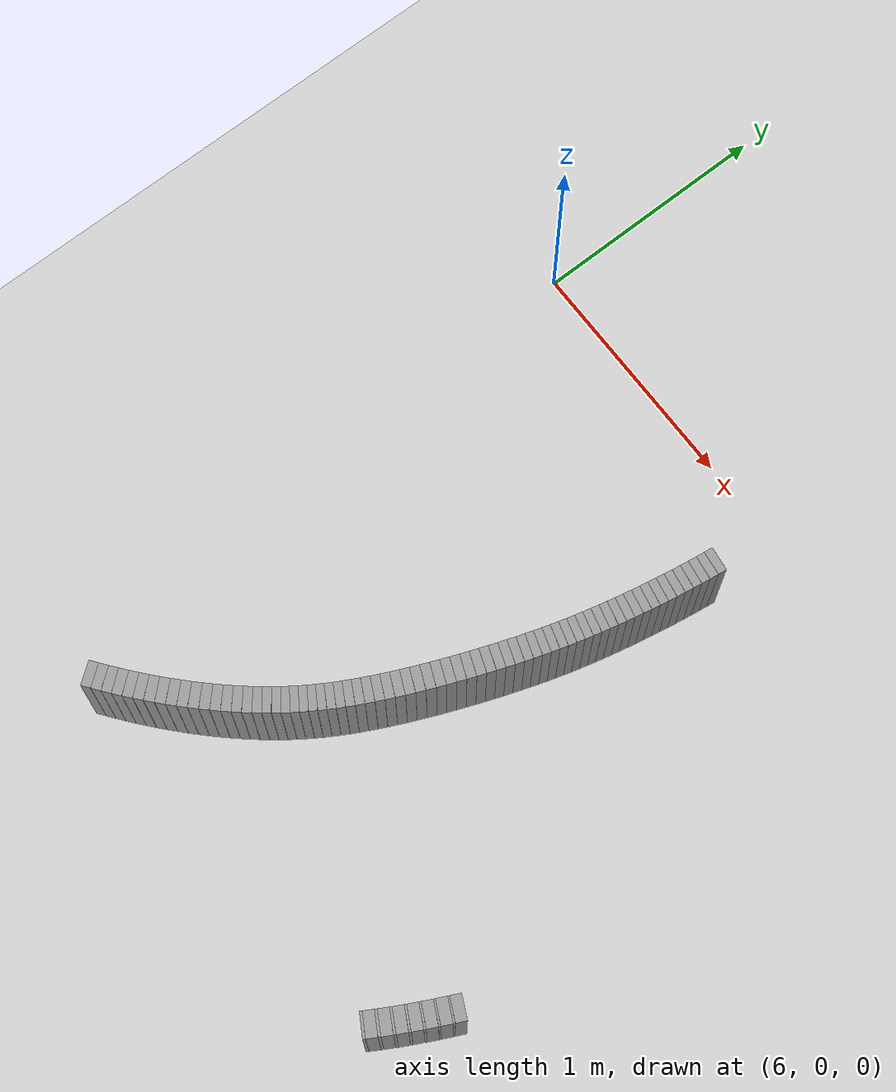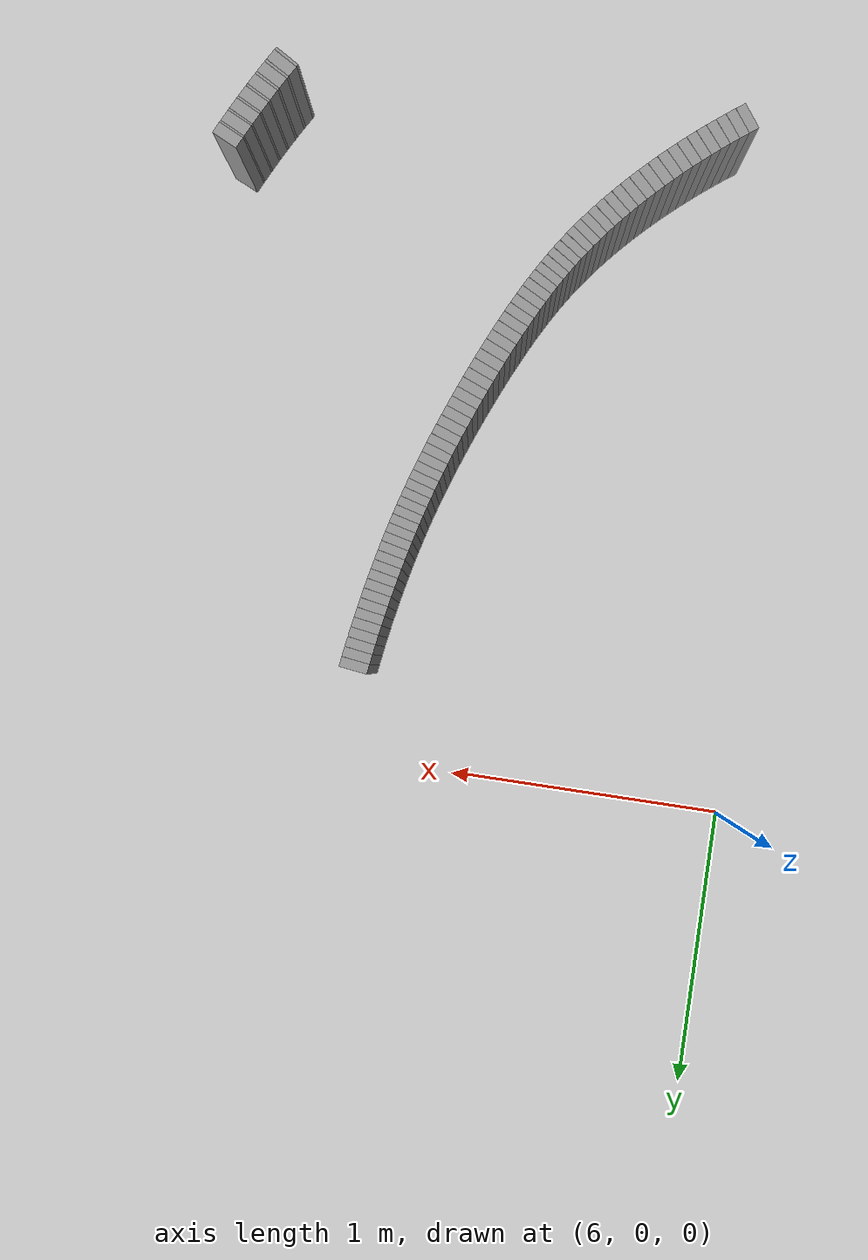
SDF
<sdf version="1.6">
 <world name="default">
  <include><uri>model://ground_plane</uri></include>
  <include><uri>model://sun</uri></include>
  <model name="wall_655_outward">
   <static>true</static>
   <link name="link">
    <collision name="collision">
     <geometry><box><size>0.038747416831680745 0.1 0.45</size></box></geometry>
    </collision>
    <visual name="visual">
     <geometry><box><size>0.038747416831680745 0.1 0.45</size></box></geometry>
     <material>
      <script><uri>file://media/materials/scripts/gazebo.material</uri><name>Gazebo/Gray</name></script>
     </material>
    </visual>
   </link>
   <pose>6.311307231462866 -2.446634651412248 0.225 0 0 0.6378931319755342</pose>
  </model>
  <model name="wall_656_outward">
   <static>true</static>
   <link name="link">
    <collision name="collision">
     <geometry><box><size>0.03888709349684669 0.1 0.45</size></box></geometry>
    </collision>
    <visual name="visual">
     <geometry><box><size>0.03888709349684669 0.1 0.45</size></box></geometry>
     <material>
      <script><uri>file://media/materials/scripts/gazebo.material</uri><name>Gazebo/Gray</name></script>
     </material>
    </visual>
   </link>
   <pose>6.342331148408654 -2.423306015688967 0.225 0 0 0.6515864064085469</pose>
  </model>
  <model name="wall_657_outward">
   <static>true</static>
   <link name="link">
    <collision name="collision">
     <geometry><box><size>0.0390929559833186 0.1 0.45</size></box></geometry>
    </collision>
    <visual name="visual">
     <geometry><box><size>0.0390929559833186 0.1 0.45</size></box></geometry>
     <material>
      <script><uri>file://media/materials/scripts/gazebo.material</uri><name>Gazebo/Gray</name></script>
     </material>
    </visual>
   </link>
   <pose>6.373163946349466 -2.399442136953753 0.225 0 0 0.6657176327346298</pose>
  </model>
  <model name="wall_658_outward">
   <static>true</static>
   <link name="link">
    <collision name="collision">
     <geometry><box><size>0.0393525218760183 0.1 0.45</size></box></geometry>
    </collision>
    <visual name="visual">
     <geometry><box><size>0.0393525218760183 0.1 0.45</size></box></geometry>
     <material>
      <script><uri>file://media/materials/scripts/gazebo.material</uri><name>Gazebo/Gray</name></script>
     </material>
    </visual>
   </link>
   <pose>6.403833737624618 -2.374994105073635 0.225 0 0 0.6802201791108807</pose>
  </model>
  <model name="wall_659_outward">
   <static>true</static>
   <link name="link">
    <collision name="collision">
     <geometry><box><size>0.03964649102106734 0.1 0.45</size></box></geometry>
    </collision>
    <visual name="visual">
     <geometry><box><size>0.03964649102106734 0.1 0.45</size></box></geometry>
     <material>
      <script><uri>file://media/materials/scripts/gazebo.material</uri><name>Gazebo/Gray</name></script>
     </material>
    </visual>
   </link>
   <pose>6.434355738448117 -2.34992354490766 0.225 0 0 0.6950248523212923</pose>
  </model>
  <model name="wall_660_outward">
   <static>true</static>
   <link name="link">
    <collision name="collision">
     <geometry><box><size>0.0399477707172006 0.1 0.45</size></box></geometry>
    </collision>
    <visual name="visual">
     <geometry><box><size>0.0399477707172006 0.1 0.45</size></box></geometry>
     <material>
      <script><uri>file://media/materials/scripts/gazebo.material</uri><name>Gazebo/Gray</name></script>
     </material>
    </visual>
   </link>
   <pose>6.464727348959415 -2.324208036813104 0.225 0 0 0.7100633068083779</pose>
  </model>
  <model name="wall_661_outward">
   <static>true</static>
   <link name="link">
    <collision name="collision">
     <geometry><box><size>0.04021680874015597 0.1 0.45</size></box></geometry>
    </collision>
    <visual name="visual">
     <geometry><box><size>0.04021680874015597 0.1 0.45</size></box></geometry>
     <material>
      <script><uri>file://media/materials/scripts/gazebo.material</uri><name>Gazebo/Gray</name></script>
     </material>
    </visual>
   </link>
   <pose>6.494921377047865 -2.2978486429975655 0.225 0 0 0.7252781700610521</pose>
  </model>
  <model name="wall_662_outward">
   <static>true</static>
   <link name="link">
    <collision name="collision">
     <geometry><box><size>0.04041200717022239 0.1 0.45</size></box></geometry>
    </collision>
    <visual name="visual">
     <geometry><box><size>0.04041200717022239 0.1 0.45</size></box></geometry>
     <material>
      <script><uri>file://media/materials/scripts/gazebo.material</uri><name>Gazebo/Gray</name></script>
     </material>
    </visual>
   </link>
   <pose>6.524881509724758 -2.2708755823564006 0.225 0 0 0.7406445479703604</pose>
  </model>
  <model name="wall_663_outward">
   <static>true</static>
   <link name="link">
    <collision name="collision">
     <geometry><box><size>0.040492106740014806 0.1 0.45</size></box></geometry>
    </collision>
    <visual name="visual">
     <geometry><box><size>0.040492106740014806 0.1 0.45</size></box></geometry>
     <material>
      <script><uri>file://media/materials/scripts/gazebo.material</uri><name>Gazebo/Gray</name></script>
     </material>
    </visual>
   </link>
   <pose>6.554522855699851 -2.243349937136828 0.225 0 0 0.7561519261517036</pose>
  </model>
  <model name="wall_664_outward">
   <static>true</static>
   <link name="link">
    <collision name="collision">
     <geometry><box><size>0.040421280522687925 0.1 0.45</size></box></geometry>
    </collision>
    <visual name="visual">
     <geometry><box><size>0.040421280522687925 0.1 0.45</size></box></geometry>
     <material>
      <script><uri>file://media/materials/scripts/gazebo.material</uri><name>Gazebo/Gray</name></script>
     </material>
    </visual>
   </link>
   <pose>6.583735153411123 -2.215362705274139 0.225 0 0 0.7718298495467955</pose>
  </model>
  <model name="wall_665_outward">
   <static>true</static>
   <link name="link">
    <collision name="collision">
     <geometry><box><size>0.0401747363946287 0.1 0.45</size></box></geometry>
    </collision>
    <visual name="visual">
     <geometry><box><size>0.0401747363946287 0.1 0.45</size></box></geometry>
     <material>
      <script><uri>file://media/materials/scripts/gazebo.material</uri><name>Gazebo/Gray</name></script>
     </material>
    </visual>
   </link>
   <pose>6.612389681235221 -2.187029950665684 0.225 0 0 0.7877224059254294</pose>
  </model>
  <model name="wall_666_outward">
   <static>true</static>
   <link name="link">
    <collision name="collision">
     <geometry><box><size>0.03973526262156999 0.1 0.45</size></box></geometry>
    </collision>
    <visual name="visual">
     <geometry><box><size>0.03973526262156999 0.1 0.45</size></box></geometry>
     <material>
      <script><uri>file://media/materials/scripts/gazebo.material</uri><name>Gazebo/Gray</name></script>
     </material>
    </visual>
   </link>
   <pose>6.640346792000537 -2.1584870440042163 0.225 0 0 0.803898272300709</pose>
  </model>
  <model name="wall_667_outward">
   <static>true</static>
   <link name="link">
    <collision name="collision">
     <geometry><box><size>0.03911395762814799 0.1 0.45</size></box></geometry>
    </collision>
    <visual name="visual">
     <geometry><box><size>0.03911395762814799 0.1 0.45</size></box></geometry>
     <material>
      <script><uri>file://media/materials/scripts/gazebo.material</uri><name>Gazebo/Gray</name></script>
     </material>
    </visual>
   </link>
   <pose>6.667468790460269 -2.1298760209772496 0.225 0 0 0.8204499657200307</pose>
  </model>
  <model name="wall_668_outward">
   <static>true</static>
   <link name="link">
    <collision name="collision">
     <geometry><box><size>0.03832798854689904 0.1 0.45</size></box></geometry>
    </collision>
    <visual name="visual">
     <geometry><box><size>0.03832798854689904 0.1 0.45</size></box></geometry>
     <material>
      <script><uri>file://media/materials/scripts/gazebo.material</uri><name>Gazebo/Gray</name></script>
     </material>
    </visual>
   </link>
   <pose>6.693632395083317 -2.101333570766262 0.225 0 0 0.8374322417400498</pose>
  </model>
  <model name="wall_669_outward">
   <static>true</static>
   <link name="link">
    <collision name="collision">
     <geometry><box><size>0.03741911348396584 0.1 0.45</size></box></geometry>
    </collision>
    <visual name="visual">
     <geometry><box><size>0.03741911348396584 0.1 0.45</size></box></geometry>
     <material>
      <script><uri>file://media/materials/scripts/gazebo.material</uri><name>Gazebo/Gray</name></script>
     </material>
    </visual>
   </link>
   <pose>6.718738687981231 -2.07297920508329 0.225 0 0 0.8549375860071171</pose>
  </model>
  <model name="wall_670_outward">
   <static>true</static>
   <link name="link">
    <collision name="collision">
     <geometry><box><size>0.036444544524232445 0.1 0.45</size></box></geometry>
    </collision>
    <visual name="visual">
     <geometry><box><size>0.036444544524232445 0.1 0.45</size></box></geometry>
     <material>
      <script><uri>file://media/materials/scripts/gazebo.material</uri><name>Gazebo/Gray</name></script>
     </material>
    </visual>
   </link>
   <pose>6.742725884326835 -2.044899612455494 0.225 0 0 0.8729721315396879</pose>
  </model>
  <model name="wall_671_outward">
   <static>true</static>
   <link name="link">
    <collision name="collision">
     <geometry><box><size>0.03545973229028524 0.1 0.45</size></box></geometry>
    </collision>
    <visual name="visual">
     <geometry><box><size>0.03545973229028524 0.1 0.45</size></box></geometry>
     <material>
      <script><uri>file://media/materials/scripts/gazebo.material</uri><name>Gazebo/Gray</name></script>
     </material>
    </visual>
   </link>
   <pose>6.7655726797611075 -2.017142294423868 0.225 0 0 0.8915489125881466</pose>
  </model>
  <model name="wall_672_outward">
   <static>true</static>
   <link name="link">
    <collision name="collision">
     <geometry><box><size>0.034540432960970514 0.1 0.45</size></box></geometry>
    </collision>
    <visual name="visual">
     <geometry><box><size>0.034540432960970514 0.1 0.45</size></box></geometry>
     <material>
      <script><uri>file://media/materials/scripts/gazebo.material</uri><name>Gazebo/Gray</name></script>
     </material>
    </visual>
   </link>
   <pose>6.787301884315653 -1.9897062565113623 0.225 0 0 0.9106126237355452</pose>
  </model>
  <model name="wall_673_outward">
   <static>true</static>
   <link name="link">
    <collision name="collision">
     <geometry><box><size>0.03374078538872502 0.1 0.45</size></box></geometry>
    </collision>
    <visual name="visual">
     <geometry><box><size>0.03374078538872502 0.1 0.45</size></box></geometry>
     <material>
      <script><uri>file://media/materials/scripts/gazebo.material</uri><name>Gazebo/Gray</name></script>
     </material>
    </visual>
   </link>
   <pose>6.807978077994241 -1.962540724245133 0.225 0 0 0.9300493403886567</pose>
  </model>
  <model name="wall_674_outward">
   <static>true</static>
   <link name="link">
    <collision name="collision">
     <geometry><box><size>0.03313095631724472 0.1 0.45</size></box></geometry>
    </collision>
    <visual name="visual">
     <geometry><box><size>0.03313095631724472 0.1 0.45</size></box></geometry>
     <material>
      <script><uri>file://media/materials/scripts/gazebo.material</uri><name>Gazebo/Gray</name></script>
     </material>
    </visual>
   </link>
   <pose>6.827702427934109 -1.9355444449445467 0.225 0 0 0.9497428519369709</pose>
  </model>
  <model name="wall_675_outward">
   <static>true</static>
   <link name="link">
    <collision name="collision">
     <geometry><box><size>0.032752248422608383 0.1 0.45</size></box></geometry>
    </collision>
    <visual name="visual">
     <geometry><box><size>0.032752248422608383 0.1 0.45</size></box></geometry>
     <material>
      <script><uri>file://media/materials/scripts/gazebo.material</uri><name>Gazebo/Gray</name></script>
     </material>
    </visual>
   </link>
   <pose>6.8466066394080665 -1.9085689998648223 0.225 0 0 0.9694466873401859</pose>
  </model>
  <model name="wall_676_outward">
   <static>true</static>
   <link name="link">
    <collision name="collision">
     <geometry><box><size>0.032608995075320515 0.1 0.45</size></box></geometry>
    </collision>
    <visual name="visual">
     <geometry><box><size>0.032608995075320515 0.1 0.45</size></box></geometry>
     <material>
      <script><uri>file://media/materials/scripts/gazebo.material</uri><name>Gazebo/Gray</name></script>
     </material>
    </visual>
   </link>
   <pose>6.864831569519396 -1.8814438618708136 0.225 0 0 0.9889777700289151</pose>
  </model>
  <model name="wall_677_outward">
   <static>true</static>
   <link name="link">
    <collision name="collision">
     <geometry><box><size>0.03270801193509638 0.1 0.45</size></box></geometry>
    </collision>
    <visual name="visual">
     <geometry><box><size>0.03270801193509638 0.1 0.45</size></box></geometry>
     <material>
      <script><uri>file://media/materials/scripts/gazebo.material</uri><name>Gazebo/Gray</name></script>
     </material>
    </visual>
   </link>
   <pose>6.882515718632405 -1.8539893350362413 0.225 0 0 1.0081176151260762</pose>
  </model>
  <model name="wall_678_outward">
   <static>true</static>
   <link name="link">
    <collision name="collision">
     <geometry><box><size>0.03302587677341144 0.1 0.45</size></box></geometry>
    </collision>
    <visual name="visual">
     <geometry><box><size>0.03302587677341144 0.1 0.45</size></box></geometry>
     <material>
      <script><uri>file://media/materials/scripts/gazebo.material</uri><name>Gazebo/Gray</name></script>
     </material>
    </visual>
   </link>
   <pose>6.8997881084292345 -1.8260285116106525 0.225 0 0 1.0266688241556865</pose>
  </model>
  <model name="wall_679_outward">
   <static>true</static>
   <link name="link">
    <collision name="collision">
     <geometry><box><size>0.03352343752667499 0.1 0.45</size></box></geometry>
    </collision>
    <visual name="visual">
     <geometry><box><size>0.03352343752667499 0.1 0.45</size></box></geometry>
     <material>
      <script><uri>file://media/materials/scripts/gazebo.material</uri><name>Gazebo/Gray</name></script>
     </material>
    </visual>
   </link>
   <pose>6.916756943816727 -1.7974072988924423 0.225 0 0 1.0444609332098056</pose>
  </model>
  <model name="wall_680_outward">
   <static>true</static>
   <link name="link">
    <collision name="collision">
     <geometry><box><size>0.0341499738957431 0.1 0.45</size></box></geometry>
    </collision>
    <visual name="visual">
     <geometry><box><size>0.0341499738957431 0.1 0.45</size></box></geometry>
     <material>
      <script><uri>file://media/materials/scripts/gazebo.material</uri><name>Gazebo/Gray</name></script>
     </material>
    </visual>
   </link>
   <pose>6.933504453827389 -1.768007270669243 0.225 0 0 1.061377560280169</pose>
  </model>
  <model name="wall_681_outward">
   <static>true</static>
   <link name="link">
    <collision name="collision">
     <geometry><box><size>0.0348540861040887 0.1 0.45</size></box></geometry>
    </collision>
    <visual name="visual">
     <geometry><box><size>0.0348540861040887 0.1 0.45</size></box></geometry>
     <material>
      <script><uri>file://media/materials/scripts/gazebo.material</uri><name>Gazebo/Gray</name></script>
     </material>
    </visual>
   </link>
   <pose>6.950086124950611 -1.7377523134168258 0.225 0 0 1.0773400360392695</pose>
  </model>
  <model name="wall_682_outward">
   <static>true</static>
   <link name="link">
    <collision name="collision">
     <geometry><box><size>0.03557476136177643 0.1 0.45</size></box></geometry>
    </collision>
    <visual name="visual">
     <geometry><box><size>0.03557476136177643 0.1 0.45</size></box></geometry>
     <material>
      <script><uri>file://media/materials/scripts/gazebo.material</uri><name>Gazebo/Gray</name></script>
     </material>
    </visual>
   </link>
   <pose>6.96653079293077 -1.7066145699181794 0.225 0 0 1.0923098046919568</pose>
  </model>
  <model name="wall_683_outward">
   <static>true</static>
   <link name="link">
    <collision name="collision">
     <geometry><box><size>0.03627989585012954 0.1 0.45</size></box></geometry>
    </collision>
    <visual name="visual">
     <geometry><box><size>0.03627989585012954 0.1 0.45</size></box></geometry>
     <material>
      <script><uri>file://media/materials/scripts/gazebo.material</uri><name>Gazebo/Gray</name></script>
     </material>
    </visual>
   </link>
   <pose>6.982846689923134 -1.6746067403843807 0.225 0 0 1.106315767361568</pose>
  </model>
  <model name="wall_684_outward">
   <static>true</static>
   <link name="link">
    <collision name="collision">
     <geometry><box><size>0.03693175585829394 0.1 0.45</size></box></geometry>
    </collision>
    <visual name="visual">
     <geometry><box><size>0.03693175585829394 0.1 0.45</size></box></geometry>
     <material>
      <script><uri>file://media/materials/scripts/gazebo.material</uri><name>Gazebo/Gray</name></script>
     </material>
    </visual>
   </link>
   <pose>6.999029001448482 -1.6417728777723404 0.225 0 0 1.1193314882433734</pose>
  </model>
  <model name="wall_685_outward">
   <static>true</static>
   <link name="link">
    <collision name="collision">
     <geometry><box><size>0.03749195572213562 0.1 0.45</size></box></geometry>
    </collision>
    <visual name="visual">
     <geometry><box><size>0.03749195572213562 0.1 0.45</size></box></geometry>
     <material>
      <script><uri>file://media/materials/scripts/gazebo.material</uri><name>Gazebo/Gray</name></script>
     </material>
    </visual>
   </link>
   <pose>7.015059285010038 -1.608191609809309 0.225 0 0 1.1314292769869272</pose>
  </model>
  <model name="wall_686_outward">
   <static>true</static>
   <link name="link">
    <collision name="collision">
     <geometry><box><size>0.03795217358886792 0.1 0.45</size></box></geometry>
    </collision>
    <visual name="visual">
     <geometry><box><size>0.03795217358886792 0.1 0.45</size></box></geometry>
     <material>
      <script><uri>file://media/materials/scripts/gazebo.material</uri><name>Gazebo/Gray</name></script>
     </material>
    </visual>
   </link>
   <pose>7.0309118872546605 -1.5739629022374482 0.225 0 0 1.1426443510406463</pose>
  </model>
  <model name="wall_687_outward">
   <static>true</static>
   <link name="link">
    <collision name="collision">
     <geometry><box><size>0.03829279118452239 0.1 0.45</size></box></geometry>
    </collision>
    <visual name="visual">
     <geometry><box><size>0.03829279118452239 0.1 0.45</size></box></geometry>
     <material>
      <script><uri>file://media/materials/scripts/gazebo.material</uri><name>Gazebo/Gray</name></script>
     </material>
    </visual>
   </link>
   <pose>7.046558621842965 -1.5391999311275701 0.225 0 0 1.1530314977140885</pose>
  </model>
  <model name="wall_688_outward">
   <static>true</static>
   <link name="link">
    <collision name="collision">
     <geometry><box><size>0.03851724037582467 0.1 0.45</size></box></geometry>
    </collision>
    <visual name="visual">
     <geometry><box><size>0.03851724037582467 0.1 0.45</size></box></geometry>
     <material>
      <script><uri>file://media/materials/scripts/gazebo.material</uri><name>Gazebo/Gray</name></script>
     </material>
    </visual>
   </link>
   <pose>7.061970231676294 -1.504023330016937 0.225 0 0 1.1626697764151543</pose>
  </model>
  <model name="wall_689_outward">
   <static>true</static>
   <link name="link">
    <collision name="collision">
     <geometry><box><size>0.03862537045192797 0.1 0.45</size></box></geometry>
    </collision>
    <visual name="visual">
     <geometry><box><size>0.03862537045192797 0.1 0.45</size></box></geometry>
     <material>
      <script><uri>file://media/materials/scripts/gazebo.material</uri><name>Gazebo/Gray</name></script>
     </material>
    </visual>
   </link>
   <pose>7.077120024499845 -1.46855221996518 0.225 0 0 1.17161040652189</pose>
  </model>
  <model name="wall_690_outward">
   <static>true</static>
   <link name="link">
    <collision name="collision">
     <geometry><box><size>0.03861339934965766 0.1 0.45</size></box></geometry>
    </collision>
    <visual name="visual">
     <geometry><box><size>0.03861339934965766 0.1 0.45</size></box></geometry>
     <material>
      <script><uri>file://media/materials/scripts/gazebo.material</uri><name>Gazebo/Gray</name></script>
     </material>
    </visual>
   </link>
   <pose>7.091981550626853 -1.432907220317619 0.225 0 0 1.1799498877082986</pose>
  </model>
  <model name="wall_691_outward">
   <static>true</static>
   <link name="link">
    <collision name="collision">
     <geometry><box><size>0.03849565201932875 0.1 0.45</size></box></geometry>
    </collision>
    <visual name="visual">
     <geometry><box><size>0.03849565201932875 0.1 0.45</size></box></geometry>
     <material>
      <script><uri>file://media/materials/scripts/gazebo.material</uri><name>Gazebo/Gray</name></script>
     </material>
    </visual>
   </link>
   <pose>7.106529830353722 -1.3972032132290022 0.225 0 0 1.1877974908716964</pose>
  </model>
  <model name="wall_692_outward">
   <static>true</static>
   <link name="link">
    <collision name="collision">
     <geometry><box><size>0.03828401369395707 0.1 0.45</size></box></geometry>
    </collision>
    <visual name="visual">
     <geometry><box><size>0.03828401369395707 0.1 0.45</size></box></geometry>
     <material>
      <script><uri>file://media/materials/scripts/gazebo.material</uri><name>Gazebo/Gray</name></script>
     </material>
    </visual>
   </link>
   <pose>7.120743612773611 -1.3615419295301976 0.225 0 0 1.1952568981286225</pose>
  </model>
  <model name="wall_693_outward">
   <static>true</static>
   <link name="link">
    <collision name="collision">
     <geometry><box><size>0.037987205945665625 0.1 0.45</size></box></geometry>
    </collision>
    <visual name="visual">
     <geometry><box><size>0.037987205945665625 0.1 0.45</size></box></geometry>
     <material>
      <script><uri>file://media/materials/scripts/gazebo.material</uri><name>Gazebo/Gray</name></script>
     </material>
    </visual>
   </link>
   <pose>7.134603553037447 -1.3260143628130536 0.225 0 0 1.2024468994688677</pose>
  </model>
  <model name="wall_694_outward">
   <static>true</static>
   <link name="link">
    <collision name="collision">
     <geometry><box><size>0.03761021670971422 0.1 0.45</size></box></geometry>
    </collision>
    <visual name="visual">
     <geometry><box><size>0.03761021670971422 0.1 0.45</size></box></geometry>
     <material>
      <script><uri>file://media/materials/scripts/gazebo.material</uri><name>Gazebo/Gray</name></script>
     </material>
    </visual>
   </link>
   <pose>7.148089948959159 -1.2907037142303404 0.225 0 0 1.209506273516029</pose>
  </model>
  <model name="wall_695_outward">
   <static>true</static>
   <link name="link">
    <collision name="collision">
     <geometry><box><size>0.03716405172915757 0.1 0.45</size></box></geometry>
    </collision>
    <visual name="visual">
     <geometry><box><size>0.03716405172915757 0.1 0.45</size></box></geometry>
     <material>
      <script><uri>file://media/materials/scripts/gazebo.material</uri><name>Gazebo/Gray</name></script>
     </material>
    </visual>
   </link>
   <pose>7.161182488461301 -1.2556842092079736 0.225 0 0 1.2165795138523365</pose>
  </model>
  <model name="wall_696_outward">
   <static>true</static>
   <link name="link">
    <collision name="collision">
     <geometry><box><size>0.0366702022097227 0.1 0.45</size></box></geometry>
    </collision>
    <visual name="visual">
     <geometry><box><size>0.0366702022097227 0.1 0.45</size></box></geometry>
     <material>
      <script><uri>file://media/materials/scripts/gazebo.material</uri><name>Gazebo/Gray</name></script>
     </material>
    </visual>
   </link>
   <pose>7.173862951922652 -1.2210134389323197 0.225 0 0 1.2238073015645237</pose>
  </model>
  <model name="wall_697_outward">
   <static>true</static>
   <link name="link">
    <collision name="collision">
     <geometry><box><size>0.03613574568496184 0.1 0.45</size></box></geometry>
    </collision>
    <visual name="visual">
     <geometry><box><size>0.03613574568496184 0.1 0.45</size></box></geometry>
     <material>
      <script><uri>file://media/materials/scripts/gazebo.material</uri><name>Gazebo/Gray</name></script>
     </material>
    </visual>
   </link>
   <pose>7.186115267566047 -1.1867346004540287 0.225 0 0 1.2312814902209597</pose>
  </model>
  <model name="wall_698_outward">
   <static>true</static>
   <link name="link">
    <collision name="collision">
     <geometry><box><size>0.03557953155474239 0.1 0.45</size></box></geometry>
    </collision>
    <visual name="visual">
     <geometry><box><size>0.03557953155474239 0.1 0.45</size></box></geometry>
     <material>
      <script><uri>file://media/materials/scripts/gazebo.material</uri><name>Gazebo/Gray</name></script>
     </material>
    </visual>
   </link>
   <pose>7.197925048258447 -1.1528778505310529 0.225 0 0 1.2391325288132669</pose>
  </model>
  <model name="wall_699_outward">
   <static>true</static>
   <link name="link">
    <collision name="collision">
     <geometry><box><size>0.03502849684217802 0.1 0.45</size></box></geometry>
    </collision>
    <visual name="visual">
     <geometry><box><size>0.03502849684217802 0.1 0.45</size></box></geometry>
     <material>
      <script><uri>file://media/materials/scripts/gazebo.material</uri><name>Gazebo/Gray</name></script>
     </material>
    </visual>
   </link>
   <pose>7.209283640762986 -1.1194512961809004 0.225 0 0 1.2473927747878695</pose>
  </model>
  <model name="wall_700_outward">
   <static>true</static>
   <link name="link">
    <collision name="collision">
     <geometry><box><size>0.03449894717743488 0.1 0.45</size></box></geometry>
    </collision>
    <visual name="visual">
     <geometry><box><size>0.03449894717743488 0.1 0.45</size></box></geometry>
     <material>
      <script><uri>file://media/materials/scripts/gazebo.material</uri><name>Gazebo/Gray</name></script>
     </material>
    </visual>
   </link>
   <pose>7.220188883424637 -1.0864426733864054 0.225 0 0 1.2560937251820978</pose>
  </model>
  <model name="wall_701_outward">
   <static>true</static>
   <link name="link">
    <collision name="collision">
     <geometry><box><size>0.03401529749478596 0.1 0.45</size></box></geometry>
    </collision>
    <visual name="visual">
     <geometry><box><size>0.03401529749478596 0.1 0.45</size></box></geometry>
     <material>
      <script><uri>file://media/materials/scripts/gazebo.material</uri><name>Gazebo/Gray</name></script>
     </material>
    </visual>
   </link>
   <pose>7.230645026745681 -1.0538206695270258 0.225 0 0 1.2652064052724932</pose>
  </model>
  <model name="wall_702_outward">
   <static>true</static>
   <link name="link">
    <collision name="collision">
     <geometry><box><size>0.03360293797007359 0.1 0.45</size></box></geometry>
    </collision>
    <visual name="visual">
     <geometry><box><size>0.03360293797007359 0.1 0.45</size></box></geometry>
     <material>
      <script><uri>file://media/materials/scripts/gazebo.material</uri><name>Gazebo/Gray</name></script>
     </material>
    </visual>
   </link>
   <pose>7.240664722095874 -1.021530786954529 0.225 0 0 1.2746771352717072</pose>
  </model>
  <model name="wall_703_outward">
   <static>true</static>
   <link name="link">
    <collision name="collision">
     <geometry><box><size>0.03328880944806756 0.1 0.45</size></box></geometry>
    </collision>
    <visual name="visual">
     <geometry><box><size>0.03328880944806756 0.1 0.45</size></box></geometry>
     <material>
      <script><uri>file://media/materials/scripts/gazebo.material</uri><name>Gazebo/Gray</name></script>
     </material>
    </visual>
   </link>
   <pose>7.250269707415601 -0.989494177623214 0.225 0 0 1.2843910639399065</pose>
  </model>
  <model name="wall_704_outward">
   <static>true</static>
   <link name="link">
    <collision name="collision">
     <geometry><box><size>0.0330820843453154 0.1 0.45</size></box></geometry>
    </collision>
    <visual name="visual">
     <geometry><box><size>0.0330820843453154 0.1 0.45</size></box></geometry>
     <material>
      <script><uri>file://media/materials/scripts/gazebo.material</uri><name>Gazebo/Gray</name></script>
     </material>
    </visual>
   </link>
   <pose>7.25948872932637 -0.9576153921173485 0.225 0 0 1.294212222134109</pose>
  </model>
  <model name="wall_705_outward">
   <static>true</static>
   <link name="link">
    <collision name="collision">
     <geometry><box><size>0.03299366678311497 0.1 0.45</size></box></geometry>
    </collision>
    <visual name="visual">
     <geometry><box><size>0.03299366678311497 0.1 0.45</size></box></geometry>
     <material>
      <script><uri>file://media/materials/scripts/gazebo.material</uri><name>Gazebo/Gray</name></script>
     </material>
    </visual>
   </link>
   <pose>7.268354684091758 -0.9257897756782588 0.225 0 0 1.3040121247060492</pose>
  </model>
  <model name="wall_706_outward">
   <static>true</static>
   <link name="link">
    <collision name="collision">
     <geometry><box><size>0.03302108995444265 0.1 0.45</size></box></geometry>
    </collision>
    <visual name="visual">
     <geometry><box><size>0.03302108995444265 0.1 0.45</size></box></geometry>
     <material>
      <script><uri>file://media/materials/scripts/gazebo.material</uri><name>Gazebo/Gray</name></script>
     </material>
    </visual>
   </link>
   <pose>7.276902963297488 -0.8939089237414685 0.225 0 0 1.3136364942238516</pose>
  </model>
  <model name="wall_707_outward">
   <static>true</static>
   <link name="link">
    <collision name="collision">
     <geometry><box><size>0.03315360118751239 0.1 0.45</size></box></geometry>
    </collision>
    <visual name="visual">
     <geometry><box><size>0.03315360118751239 0.1 0.45</size></box></geometry>
     <material>
      <script><uri>file://media/materials/scripts/gazebo.material</uri><name>Gazebo/Gray</name></script>
     </material>
    </visual>
   </link>
   <pose>7.285168162731653 -0.8618708995657541 0.225 0 0 1.322985614442614</pose>
  </model>
  <model name="wall_708_outward">
   <static>true</static>
   <link name="link">
    <collision name="collision">
     <geometry><box><size>0.03337528617377307 0.1 0.45</size></box></geometry>
    </collision>
    <visual name="visual">
     <geometry><box><size>0.03337528617377307 0.1 0.45</size></box></geometry>
     <material>
      <script><uri>file://media/materials/scripts/gazebo.material</uri><name>Gazebo/Gray</name></script>
     </material>
    </visual>
   </link>
   <pose>7.293181987158189 -0.8295865449642408 0.225 0 0 1.3319600142573502</pose>
  </model>
  <model name="wall_709_outward">
   <static>true</static>
   <link name="link">
    <collision name="collision">
     <geometry><box><size>0.03365007789181284 0.1 0.45</size></box></geometry>
    </collision>
    <visual name="visual">
     <geometry><box><size>0.03365007789181284 0.1 0.45</size></box></geometry>
     <material>
      <script><uri>file://media/materials/scripts/gazebo.material</uri><name>Gazebo/Gray</name></script>
     </material>
    </visual>
   </link>
   <pose>7.3009700443018914 -0.79699167664329 0.225 0 0 1.3405219231163112</pose>
  </model>
  <model name="wall_710_outward">
   <static>true</static>
   <link name="link">
    <collision name="collision">
     <geometry><box><size>0.033948868620850475 0.1 0.45</size></box></geometry>
    </collision>
    <visual name="visual">
     <geometry><box><size>0.033948868620850475 0.1 0.45</size></box></geometry>
     <material>
      <script><uri>file://media/materials/scripts/gazebo.material</uri><name>Gazebo/Gray</name></script>
     </material>
    </visual>
   </link>
   <pose>7.308549333437515 -0.7640532541906335 0.225 0 0 1.3486987462048747</pose>
  </model>
  <model name="wall_711_outward">
   <static>true</static>
   <link name="link">
    <collision name="collision">
     <geometry><box><size>0.034238341187169764 0.1 0.45</size></box></geometry>
    </collision>
    <visual name="visual">
     <geometry><box><size>0.034238341187169764 0.1 0.45</size></box></geometry>
     <material>
      <script><uri>file://media/materials/scripts/gazebo.material</uri><name>Gazebo/Gray</name></script>
     </material>
    </visual>
   </link>
   <pose>7.315928341853351 -0.7307680280715156 0.225 0 0 1.356536827805545</pose>
  </model>
  <model name="wall_712_outward">
   <static>true</static>
   <link name="link">
    <collision name="collision">
     <geometry><box><size>0.0344864481165643 0.1 0.45</size></box></geometry>
    </collision>
    <visual name="visual">
     <geometry><box><size>0.0344864481165643 0.1 0.45</size></box></geometry>
     <material>
      <script><uri>file://media/materials/scripts/gazebo.material</uri><name>Gazebo/Gray</name></script>
     </material>
    </visual>
   </link>
   <pose>7.323106158043009 -0.6971639212900149 0.225 0 0 1.3641542590677576</pose>
  </model>
  <model name="wall_713_outward">
   <static>true</static>
   <link name="link">
    <collision name="collision">
     <geometry><box><size>0.034686088497694036 0.1 0.45</size></box></geometry>
    </collision>
    <visual name="visual">
     <geometry><box><size>0.034686088497694036 0.1 0.45</size></box></geometry>
     <material>
      <script><uri>file://media/materials/scripts/gazebo.material</uri><name>Gazebo/Gray</name></script>
     </material>
    </visual>
   </link>
   <pose>7.330074581098719 -0.6632871724847764 0.225 0 0 1.3716775042371527</pose>
  </model>
  <model name="wall_714_outward">
   <static>true</static>
   <link name="link">
    <collision name="collision">
     <geometry><box><size>0.03482787678282281 0.1 0.45</size></box></geometry>
    </collision>
    <visual name="visual">
     <geometry><box><size>0.03482787678282281 0.1 0.45</size></box></geometry>
     <material>
      <script><uri>file://media/materials/scripts/gazebo.material</uri><name>Gazebo/Gray</name></script>
     </material>
    </visual>
   </link>
   <pose>7.336821149240586 -0.6291915047851062 0.225 0 0 1.3792032108490446</pose>
  </model>
  <model name="wall_715_outward">
   <static>true</static>
   <link name="link">
    <collision name="collision">
     <geometry><box><size>0.03490888961122496 0.1 0.45</size></box></geometry>
    </collision>
    <visual name="visual">
     <geometry><box><size>0.03490888961122496 0.1 0.45</size></box></geometry>
     <material>
      <script><uri>file://media/materials/scripts/gazebo.material</uri><name>Gazebo/Gray</name></script>
     </material>
    </visual>
   </link>
   <pose>7.3433296941633985 -0.5949362103612119 0.225 0 0 1.3868544645652</pose>
  </model>
  <model name="wall_716_outward">
   <static>true</static>
   <link name="link">
    <collision name="collision">
     <geometry><box><size>0.03495521909225806 0.1 0.45</size></box></geometry>
    </collision>
    <visual name="visual">
     <geometry><box><size>0.03495521909225806 0.1 0.45</size></box></geometry>
     <material>
      <script><uri>file://media/materials/scripts/gazebo.material</uri><name>Gazebo/Gray</name></script>
     </material>
    </visual>
   </link>
   <pose>7.349584230913232 -0.5605689227898949 0.225 0 0 1.394691442517951</pose>
  </model>
  <model name="wall_717_outward">
   <static>true</static>
   <link name="link">
    <collision name="collision">
     <geometry><box><size>0.03497851984429733 0.1 0.45</size></box></geometry>
    </collision>
    <visual name="visual">
     <geometry><box><size>0.03497851984429733 0.1 0.45</size></box></geometry>
     <material>
      <script><uri>file://media/materials/scripts/gazebo.material</uri><name>Gazebo/Gray</name></script>
     </material>
    </visual>
   </link>
   <pose>7.355571985069023 -0.5261188274611064 0.225 0 0 1.4027179010146045</pose>
  </model>
  <model name="wall_718_outward">
   <static>true</static>
   <link name="link">
    <collision name="collision">
     <geometry><box><size>0.03501004256575782 0.1 0.45</size></box></geometry>
    </collision>
    <visual name="visual">
     <geometry><box><size>0.03501004256575782 0.1 0.45</size></box></geometry>
     <material>
      <script><uri>file://media/materials/scripts/gazebo.material</uri><name>Gazebo/Gray</name></script>
     </material>
    </visual>
   </link>
   <pose>7.361284446678383 -0.49159424348304637 0.225 0 0 1.4109209195594843</pose>
  </model>
  <model name="wall_719_outward">
   <static>true</static>
   <link name="link">
    <collision name="collision">
     <geometry><box><size>0.03508414962025555 0.1 0.45</size></box></geometry>
    </collision>
    <visual name="visual">
     <geometry><box><size>0.03508414962025555 0.1 0.45</size></box></geometry>
     <material>
      <script><uri>file://media/materials/scripts/gazebo.material</uri><name>Gazebo/Gray</name></script>
     </material>
    </visual>
   </link>
   <pose>7.366720527409166 -0.4569716065366999 0.225 0 0 1.4191870071561694</pose>
  </model>
  <model name="wall_720_outward">
   <static>true</static>
   <link name="link">
    <collision name="collision">
     <geometry><box><size>0.03521883841289245 0.1 0.45</size></box></geometry>
    </collision>
    <visual name="visual">
     <geometry><box><size>0.03521883841289245 0.1 0.45</size></box></geometry>
     <material>
      <script><uri>file://media/materials/scripts/gazebo.material</uri><name>Gazebo/Gray</name></script>
     </material>
    </visual>
   </link>
   <pose>7.371886839549979 -0.4222021364623395 0.225 0 0 1.4273732773176369</pose>
  </model>
  <model name="wall_721_outward">
   <static>true</static>
   <link name="link">
    <collision name="collision">
     <geometry><box><size>0.03544648217022042 0.1 0.45</size></box></geometry>
    </collision>
    <visual name="visual">
     <geometry><box><size>0.03544648217022042 0.1 0.45</size></box></geometry>
     <material>
      <script><uri>file://media/materials/scripts/gazebo.material</uri><name>Gazebo/Gray</name></script>
     </material>
    </visual>
   </link>
   <pose>7.376797620881029 -0.38721268909073825 0.225 0 0 1.4353147049853134</pose>
  </model>
  <model name="wall_722_outward">
   <static>true</static>
   <link name="link">
    <collision name="collision">
     <geometry><box><size>0.0357800077340921 0.1 0.45</size></box></geometry>
    </collision>
    <visual name="visual">
     <geometry><box><size>0.0357800077340921 0.1 0.45</size></box></geometry>
     <material>
      <script><uri>file://media/materials/scripts/gazebo.material</uri><name>Gazebo/Gray</name></script>
     </material>
    </visual>
   </link>
   <pose>7.381475627910408 -0.35190827220080667 0.225 0 0 1.4427681512172192</pose>
  </model>
  <model name="wall_956_inward">
   <static>true</static>
   <link name="link">
    <collision name="collision">
     <geometry><box><size>0.01067512462664455 0.1 0.45</size></box></geometry>
    </collision>
    <visual name="visual">
     <geometry><box><size>0.01067512462664455 0.1 0.45</size></box></geometry>
     <material>
      <script><uri>file://media/materials/scripts/gazebo.material</uri><name>Gazebo/Gray</name></script>
     </material>
    </visual>
   </link>
   <pose>7.940517117111099 -2.4239485440796575 0.225 0 0 1.0355648786827285</pose>
  </model>
  <model name="wall_957_inward">
   <static>true</static>
   <link name="link">
    <collision name="collision">
     <geometry><box><size>0.043936320205049256 0.1 0.45</size></box></geometry>
    </collision>
    <visual name="visual">
     <geometry><box><size>0.043936320205049256 0.1 0.45</size></box></geometry>
     <material>
      <script><uri>file://media/materials/scripts/gazebo.material</uri><name>Gazebo/Gray</name></script>
     </material>
    </visual>
   </link>
   <pose>7.954275591076377 -2.40036258233944 0.225 0 0 1.0444609332097845</pose>
  </model>
  <model name="wall_958_inward">
   <static>true</static>
   <link name="link">
    <collision name="collision">
     <geometry><box><size>0.010149855215931583 0.1 0.45</size></box></geometry>
    </collision>
    <visual name="visual">
     <geometry><box><size>0.010149855215931583 0.1 0.45</size></box></geometry>
     <material>
      <script><uri>file://media/materials/scripts/gazebo.material</uri><name>Gazebo/Gray</name></script>
     </material>
    </visual>
   </link>
   <pose>7.967823969508767 -2.376958265243906 0.225 0 0 1.0529192467450066</pose>
  </model>
  <model name="wall_959_inward">
   <static>true</static>
   <link name="link">
    <collision name="collision">
     <geometry><box><size>0.044013927458647614 0.1 0.45</size></box></geometry>
    </collision>
    <visual name="visual">
     <geometry><box><size>0.044013927458647614 0.1 0.45</size></box></geometry>
     <material>
      <script><uri>file://media/materials/scripts/gazebo.material</uri><name>Gazebo/Gray</name></script>
     </material>
    </visual>
   </link>
   <pose>7.98106837868554 -2.353336104593097 0.225 0 0 1.0613775602801767</pose>
  </model>
  <model name="wall_960_inward">
   <static>true</static>
   <link name="link">
    <collision name="collision">
     <geometry><box><size>0.009577383774552856 0.1 0.45</size></box></geometry>
    </collision>
    <visual name="visual">
     <geometry><box><size>0.009577383774552856 0.1 0.45</size></box></geometry>
     <material>
      <script><uri>file://media/materials/scripts/gazebo.material</uri><name>Gazebo/Gray</name></script>
     </material>
    </visual>
   </link>
   <pose>7.9941023723888955 -2.3299242389031036 0.225 0 0 1.069358798159666</pose>
  </model>
  <model name="wall_961_inward">
   <static>true</static>
   <link name="link">
    <collision name="collision">
     <geometry><box><size>0.044133944979163946 0.1 0.45</size></box></geometry>
    </collision>
    <visual name="visual">
     <geometry><box><size>0.044133944979163946 0.1 0.45</size></box></geometry>
     <material>
      <script><uri>file://media/materials/scripts/gazebo.material</uri><name>Gazebo/Gray</name></script>
     </material>
    </visual>
   </link>
   <pose>8.006856754153764 -2.3062906669421115 0.225 0 0 1.0773400360392678</pose>
  </model>
  <model name="wall_962_inward">
   <static>true</static>
   <link name="link">
    <collision name="collision">
     <geometry><box><size>0.00898177732598987 0.1 0.45</size></box></geometry>
    </collision>
    <visual name="visual">
     <geometry><box><size>0.00898177732598987 0.1 0.45</size></box></geometry>
     <material>
      <script><uri>file://media/materials/scripts/gazebo.material</uri><name>Gazebo/Gray</name></script>
     </material>
    </visual>
   </link>
   <pose>8.01940682415375 -2.282885321824489 0.225 0 0 1.0848249203656213</pose>
  </model>
  <model name="wall_963_inward">
   <static>true</static>
   <link name="link">
    <collision name="collision">
     <geometry><box><size>0.04426763331525639 0.1 0.45</size></box></geometry>
    </collision>
    <visual name="visual">
     <geometry><box><size>0.04426763331525639 0.1 0.45</size></box></geometry>
     <material>
      <script><uri>file://media/materials/scripts/gazebo.material</uri><name>Gazebo/Gray</name></script>
     </material>
    </visual>
   </link>
   <pose>8.031695582809006 -2.259266351157136 0.225 0 0 1.0923098046919992</pose>
  </model>
  <model name="wall_964_inward">
   <static>true</static>
   <link name="link">
    <collision name="collision">
     <geometry><box><size>0.008403508914234912 0.1 0.45</size></box></geometry>
    </collision>
    <visual name="visual">
     <geometry><box><size>0.008403508914234912 0.1 0.45</size></box></geometry>
     <material>
      <script><uri>file://media/materials/scripts/gazebo.material</uri><name>Gazebo/Gray</name></script>
     </material>
    </visual>
   </link>
   <pose>8.04379526568139 -2.2358749976387657 0.225 0 0 1.0993127860267737</pose>
  </model>
  <model name="wall_965_inward">
   <static>true</static>
   <link name="link">
    <collision name="collision">
     <geometry><box><size>0.044386524730012616 0.1 0.45</size></box></geometry>
    </collision>
    <visual name="visual">
     <geometry><box><size>0.044386524730012616 0.1 0.45</size></box></geometry>
     <material>
      <script><uri>file://media/materials/scripts/gazebo.material</uri><name>Gazebo/Gray</name></script>
     </material>
    </visual>
   </link>
   <pose>8.0556453976148 -2.2122896904954334 0.225 0 0 1.1063157673615707</pose>
  </model>
  <model name="wall_966_inward">
   <static>true</static>
   <link name="link">
    <collision name="collision">
     <geometry><box><size>0.007809377404693015 0.1 0.45</size></box></geometry>
    </collision>
    <visual name="visual">
     <geometry><box><size>0.007809377404693015 0.1 0.45</size></box></geometry>
     <material>
      <script><uri>file://media/materials/scripts/gazebo.material</uri><name>Gazebo/Gray</name></script>
     </material>
    </visual>
   </link>
   <pose>8.067313439575617 -2.1889453940490693 0.225 0 0 1.112823627802376</pose>
  </model>
  <model name="wall_967_inward">
   <static>true</static>
   <link name="link">
    <collision name="collision">
     <geometry><box><size>0.04446590813678099 0.1 0.45</size></box></geometry>
    </collision>
    <visual name="visual">
     <geometry><box><size>0.04446590813678099 0.1 0.45</size></box></geometry>
     <material>
      <script><uri>file://media/materials/scripts/gazebo.material</uri><name>Gazebo/Gray</name></script>
     </material>
    </visual>
   </link>
   <pose>8.078739705878782 -2.165437669121354 0.225 0 0 1.119331488243387</pose>
  </model>
  <model name="wall_968_inward">
   <static>true</static>
   <link name="link">
    <collision name="collision">
     <geometry><box><size>0.0072586289814617075 0.1 0.45</size></box></geometry>
    </collision>
    <visual name="visual">
     <geometry><box><size>0.0072586289814617075 0.1 0.45</size></box></geometry>
     <material>
      <script><uri>file://media/materials/scripts/gazebo.material</uri><name>Gazebo/Gray</name></script>
     </material>
    </visual>
   </link>
   <pose>8.0900032191762 -2.14215704948094 0.225 0 0 1.1253803826150663</pose>
  </model>
  <model name="wall_969_inward">
   <static>true</static>
   <link name="link">
    <collision name="collision">
     <geometry><box><size>0.044485894092289986 0.1 0.45</size></box></geometry>
    </collision>
    <visual name="visual">
     <geometry><box><size>0.044485894092289986 0.1 0.45</size></box></geometry>
     <material>
      <script><uri>file://media/materials/scripts/gazebo.material</uri><name>Gazebo/Gray</name></script>
     </material>
    </visual>
   </link>
   <pose>8.101028258000103 -2.11875150564501 0.225 0 0 1.1314292769869365</pose>
  </model>
 </world>
</sdf>
